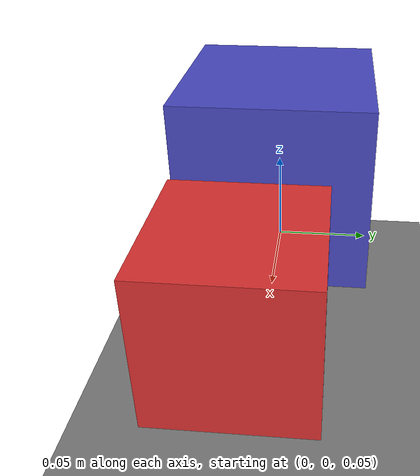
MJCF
<mujoco model="mounted-base-free-body">
  <compiler angle="radian" autolimits="true"/>
  <option timestep="0.002"/>
  <default><joint damping="1" armature=".05"/><geom friction="1 .005 .0001"/></default>
  <worldbody>
    <geom name="pad" type="box" size=".4 .4 .02" pos="0 0 -.02" rgba=".5 .5 .5 1"/>
    <body name="mount" pos="0 0 .1">
      <geom name="mount_geom" type="box" size=".05 .05 .05" rgba=".3 .3 .8 1"/>
    </body>
    <body name="cube" pos=".15 0 .12">
      <freejoint name="cube_free"/>
      <geom name="cube_geom" type="box" size=".03 .03 .03" mass=".2" rgba=".9 .2 .2 1"/>
    </body>
  </worldbody>
</mujoco>
